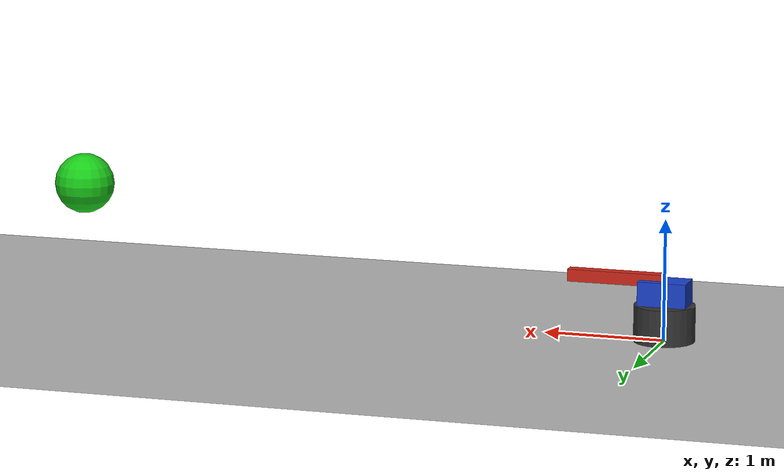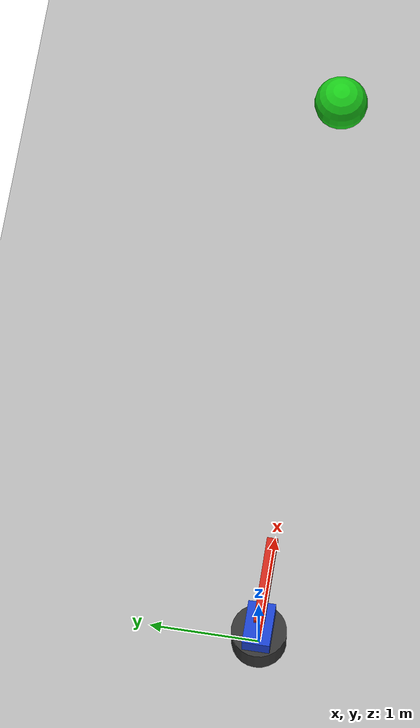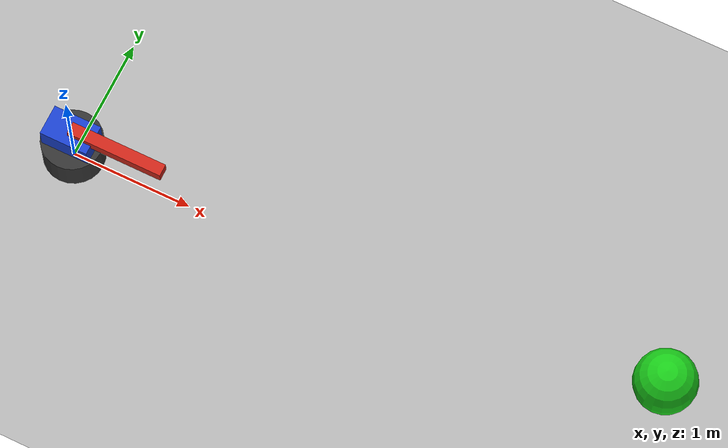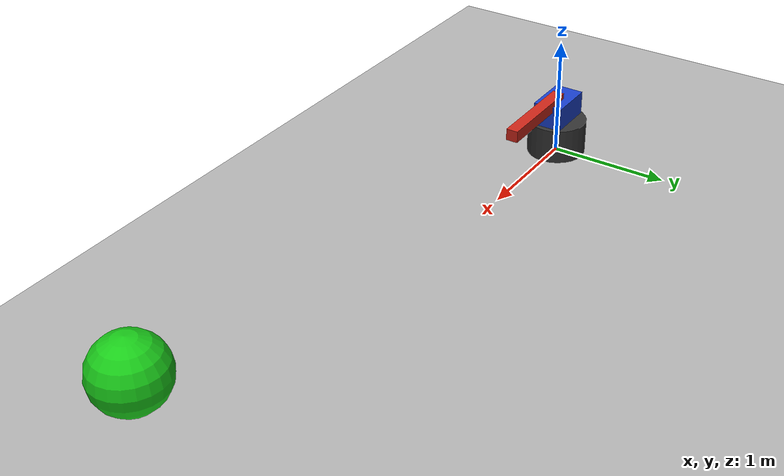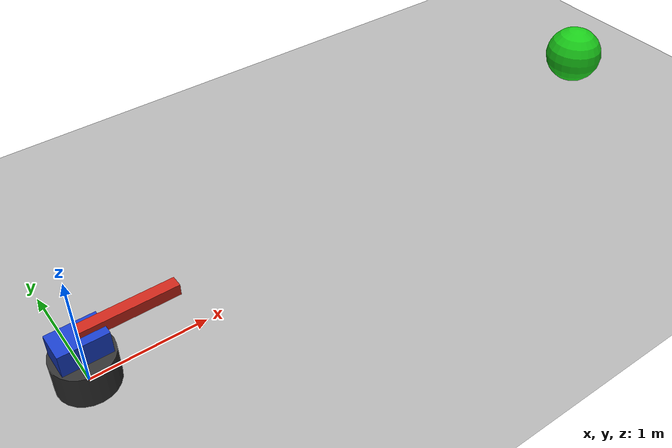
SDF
<?xml version="1.0" ?>

<sdf version="1.9">
  <world name="pan_tilt_world">

    <physics name="physics" type="ignored">
      <max_step_size>0.001</max_step_size>
      <real_time_factor>1.0</real_time_factor>
    </physics>

    <plugin
      filename="gz-sim-physics-system"
      name="gz::sim::systems::Physics">
    </plugin>

    <plugin
      filename="gz-sim-user-commands-system"
      name="gz::sim::systems::UserCommands">
    </plugin>

    <plugin
      filename="gz-sim-scene-broadcaster-system"
      name="gz::sim::systems::SceneBroadcaster">
    </plugin>

    <light type="directional" name="sun">
      <cast_shadows>true</cast_shadows>

      <pose>0 0 10 0 0 0</pose>

      <diffuse>0.8 0.8 0.8 1</diffuse>
      <specular>0.2 0.2 0.2 1</specular>

      <direction>-0.5 0.1 -0.9</direction>
    </light>

    <model name="ground_plane">
      <static>true</static>

      <link name="link">
        <collision name="collision">
          <geometry>
            <plane>
              <normal>0 0 1</normal>
              <size>20 20</size>
            </plane>
          </geometry>
        </collision>

        <visual name="visual">
          <geometry>
            <plane>
              <normal>0 0 1</normal>
              <size>20 20</size>
            </plane>
          </geometry>

          <material>
            <ambient>0.7 0.7 0.7 1</ambient>
            <diffuse>0.7 0.7 0.7 1</diffuse>
          </material>
        </visual>
      </link>
    </model>

    <include>
      <uri>model://pan_tilt</uri>
      <pose>0 0 0 0 0 0</pose>
    </include>

    <!-- Karşıda referans olması için bir hedef -->
    <model name="target">
      <static>true</static>

      <pose>5 0 1 0 0 0</pose>

      <link name="target_link">
        <visual name="target_visual">
          <geometry>
            <sphere>
              <radius>0.25</radius>
            </sphere>
          </geometry>

          <material>
            <ambient>0.1 0.8 0.1 1</ambient>
            <diffuse>0.1 0.8 0.1 1</diffuse>
          </material>
        </visual>

        <collision name="target_collision">
          <geometry>
            <sphere>
              <radius>0.25</radius>
            </sphere>
          </geometry>
        </collision>
      </link>
    </model>

  </world>
</sdf>

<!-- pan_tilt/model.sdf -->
<sdf version="1.9">
  <model name="pan_tilt">

    <!-- Model zeminde sabit dursun. -->
    <static>false</static>

    <!-- Alt sabit gövde -->
    <link name="base_link">
      <pose>0 0 0.15 0 0 0</pose>

      <inertial>
        <mass>5.0</mass>
        <inertia>
          <ixx>0.10</ixx>
          <iyy>0.10</iyy>
          <izz>0.10</izz>
          <ixy>0.0</ixy>
          <ixz>0.0</ixz>
          <iyz>0.0</iyz>
        </inertia>
      </inertial>

      <visual name="base_visual">
        <geometry>
          <cylinder>
            <radius>0.25</radius>
            <length>0.30</length>
          </cylinder>
        </geometry>

        <material>
          <ambient>0.15 0.15 0.15 1</ambient>
          <diffuse>0.20 0.20 0.20 1</diffuse>
        </material>
      </visual>

      <collision name="base_collision">
        <geometry>
          <cylinder>
            <radius>0.25</radius>
            <length>0.30</length>
          </cylinder>
        </geometry>
      </collision>
    </link>

    <!-- Yatay dönen bölüm -->
    <link name="pan_link">
      <pose>0 0 0.40 0 0 0</pose>

      <inertial>
        <mass>1.0</mass>
        <inertia>
          <ixx>0.02</ixx>
          <iyy>0.02</iyy>
          <izz>0.02</izz>
          <ixy>0.0</ixy>
          <ixz>0.0</ixz>
          <iyz>0.0</iyz>
        </inertia>
      </inertial>

      <visual name="pan_visual">
        <geometry>
          <box>
            <size>0.40 0.25 0.20</size>
          </box>
        </geometry>

        <material>
          <ambient>0.10 0.25 0.80 1</ambient>
          <diffuse>0.10 0.25 0.80 1</diffuse>
        </material>
      </visual>

      <collision name="pan_collision">
        <geometry>
          <box>
            <size>0.40 0.25 0.20</size>
          </box>
        </geometry>
      </collision>
    </link>

    <!-- Dikey hareket eden namlu / lazer gövdesi -->
    <link name="tilt_link">
      <pose>0.40 0 0.50 0 0 0</pose>

      <inertial>
        <mass>0.5</mass>
        <inertia>
          <ixx>0.01</ixx>
          <iyy>0.01</iyy>
          <izz>0.01</izz>
          <ixy>0.0</ixy>
          <ixz>0.0</ixz>
          <iyz>0.0</iyz>
        </inertia>
      </inertial>

      <visual name="tilt_visual">
        <geometry>
          <box>
            <size>0.80 0.10 0.10</size>
          </box>
        </geometry>

        <material>
          <ambient>0.80 0.15 0.10 1</ambient>
          <diffuse>0.80 0.15 0.10 1</diffuse>
        </material>
      </visual>

      <collision name="tilt_collision">
        <geometry>
          <box>
            <size>0.80 0.10 0.10</size>
          </box>
        </geometry>
      </collision>
    </link>

    <!-- Base'i dünyaya sabitle -->
    <joint name="base_fixed_joint" type="fixed">
      <parent>world</parent>
      <child>base_link</child>
    </joint>

    <!-- Yatay eksen: Z ekseni etrafında dönme -->
    <joint name="pan_joint" type="revolute">
      <pose relative_to="base_link">0 0 0.25 0 0 0</pose>

      <parent>base_link</parent>
      <child>pan_link</child>

      <axis>
        <xyz>0 0 1</xyz>

        <limit>
          <lower>-1.5708</lower>
          <upper>1.5708</upper>
          <effort>50</effort>
          <velocity>2</velocity>
        </limit>

        <dynamics>
          <damping>0.5</damping>
          <friction>0.1</friction>
        </dynamics>
      </axis>
    </joint>

    <!-- Dikey eksen: Y ekseni etrafında dönme -->
    <joint name="tilt_joint" type="revolute">
      <pose relative_to="pan_link">0.20 0 0.10 0 0 0</pose>

      <parent>pan_link</parent>
      <child>tilt_link</child>

      <axis>
        <xyz>0 1 0</xyz>

        <limit>
          <lower>-0.7854</lower>
          <upper>0.7854</upper>
          <effort>30</effort>
          <velocity>2</velocity>
        </limit>

        <dynamics>
          <damping>0.5</damping>
          <friction>0.1</friction>
        </dynamics>
      </axis>
    </joint>

    <!-- Pan eklemi konum kontrolcüsü -->
    <plugin
      filename="gz-sim-joint-position-controller-system"
      name="gz::sim::systems::JointPositionController">

      <joint_name>pan_joint</joint_name>
      <topic>/pan_cmd</topic>

      <p_gain>10.0</p_gain>
      <i_gain>0.1</i_gain>
      <d_gain>1.0</d_gain>

      <i_max>1.0</i_max>
      <i_min>-1.0</i_min>

      <cmd_max>50.0</cmd_max>
      <cmd_min>-50.0</cmd_min>
    </plugin>

    <!-- Tilt eklemi konum kontrolcüsü -->
    <plugin
      filename="gz-sim-joint-position-controller-system"
      name="gz::sim::systems::JointPositionController">

      <joint_name>tilt_joint</joint_name>
      <topic>/tilt_cmd</topic>

      <p_gain>10.0</p_gain>
      <i_gain>0.1</i_gain>
      <d_gain>1.0</d_gain>

      <i_max>1.0</i_max>
      <i_min>-1.0</i_min>

      <cmd_max>30.0</cmd_max>
      <cmd_min>-30.0</cmd_min>
    </plugin>

  </model>
</sdf>
